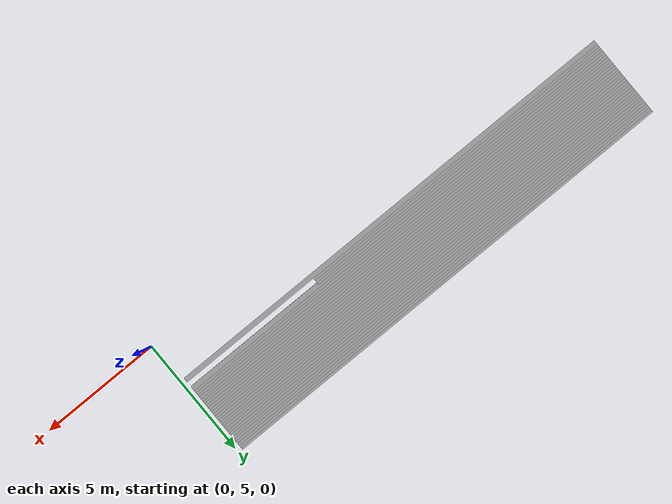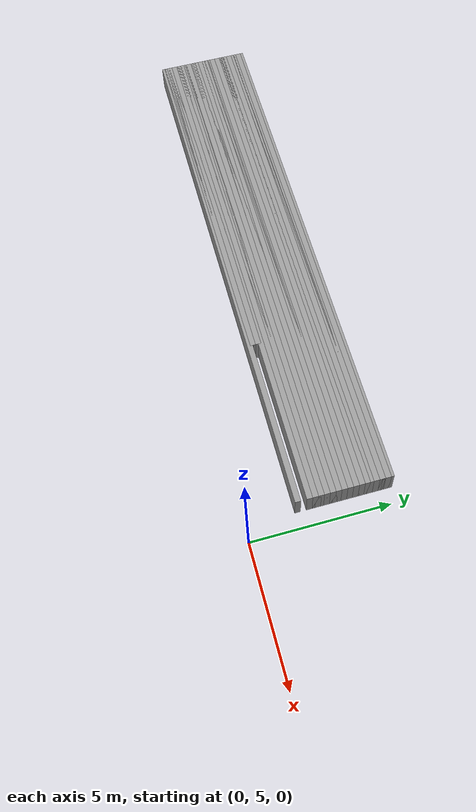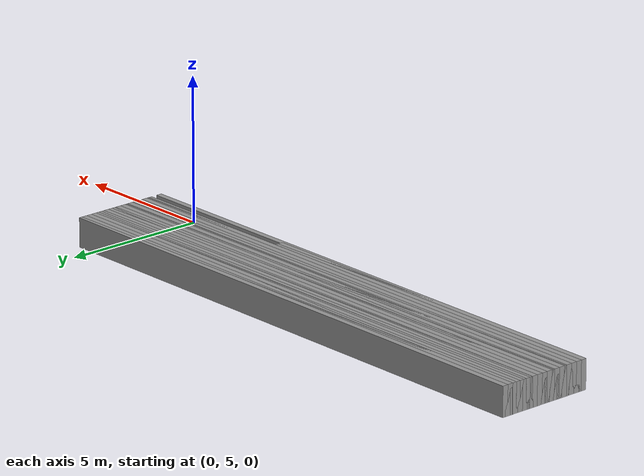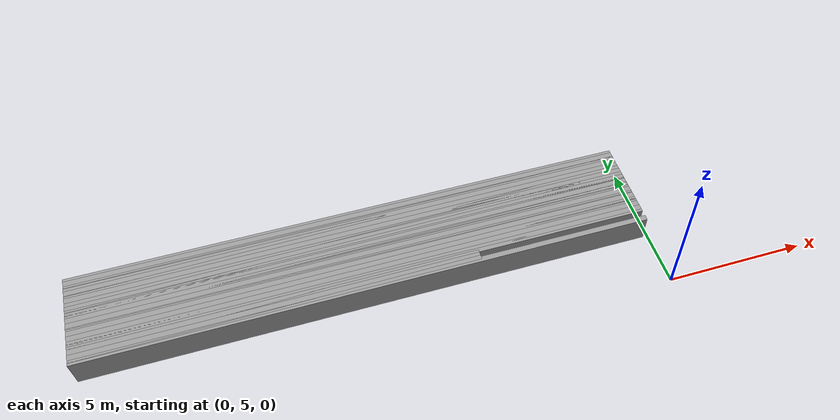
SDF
<sdf version="1.6">
 <world name="GridMap">
  <model name="GridMap">
   <link name="Wall_(101.5,68.0)">
    <collision name="Wall_(101.5,68.0)_Collision">
     <geometry><box><size>19.5 0.2 1.0</size></box></geometry>
     <pose>-10.15 6.800000000000001 0.5 0 -0 0</pose>
    </collision>
    <visual name="Wall_(101.5,68.0)_Visual">
     <geometry><box><size>19.5 0.2 1.0</size></box></geometry>
     <pose>-10.15 6.800000000000001 0.5 0 -0 0</pose>
     <material>
      <script><uri>file://media/materials/scripts/gazebo.material</uri><name>Gazebo/Grey</name></script>
      <ambient>1 1 1 1</ambient>
     </material>
     <meta><layer>0</layer></meta>
    </visual>
    <pose>0 0 0.5 0 -0 0</pose>
   </link>
   <link name="Wall_(131.5,69.0)">
    <collision name="Wall_(131.5,69.0)_Collision">
     <geometry><box><size>13.5 0.2 1.0</size></box></geometry>
     <pose>-13.15 6.9 0.5 0 -0 0</pose>
    </collision>
    <visual name="Wall_(131.5,69.0)_Visual">
     <geometry><box><size>13.5 0.2 1.0</size></box></geometry>
     <pose>-13.15 6.9 0.5 0 -0 0</pose>
     <material>
      <script><uri>file://media/materials/scripts/gazebo.material</uri><name>Gazebo/Grey</name></script>
      <ambient>1 1 1 1</ambient>
     </material>
     <meta><layer>0</layer></meta>
    </visual>
    <pose>0 0 0.5 0 -0 0</pose>
   </link>
   <link name="Wall_(131.5,70.0)">
    <collision name="Wall_(131.5,70.0)_Collision">
     <geometry><box><size>13.5 0.2 1.0</size></box></geometry>
     <pose>-13.15 7.0 0.5 0 -0 0</pose>
    </collision>
    <visual name="Wall_(131.5,70.0)_Visual">
     <geometry><box><size>13.5 0.2 1.0</size></box></geometry>
     <pose>-13.15 7.0 0.5 0 -0 0</pose>
     <material>
      <script><uri>file://media/materials/scripts/gazebo.material</uri><name>Gazebo/Grey</name></script>
      <ambient>1 1 1 1</ambient>
     </material>
     <meta><layer>0</layer></meta>
    </visual>
    <pose>0 0 0.5 0 -0 0</pose>
   </link>
   <link name="Wall_(131.5,71.0)">
    <collision name="Wall_(131.5,71.0)_Collision">
     <geometry><box><size>13.5 0.2 1.0</size></box></geometry>
     <pose>-13.15 7.1000000000000005 0.5 0 -0 0</pose>
    </collision>
    <visual name="Wall_(131.5,71.0)_Visual">
     <geometry><box><size>13.5 0.2 1.0</size></box></geometry>
     <pose>-13.15 7.1000000000000005 0.5 0 -0 0</pose>
     <material>
      <script><uri>file://media/materials/scripts/gazebo.material</uri><name>Gazebo/Grey</name></script>
      <ambient>1 1 1 1</ambient>
     </material>
     <meta><layer>0</layer></meta>
    </visual>
    <pose>0 0 0.5 0 -0 0</pose>
   </link>
   <link name="Wall_(101.5,72.0)">
    <collision name="Wall_(101.5,72.0)_Collision">
     <geometry><box><size>19.5 0.2 1.0</size></box></geometry>
     <pose>-10.15 7.2 0.5 0 -0 0</pose>
    </collision>
    <visual name="Wall_(101.5,72.0)_Visual">
     <geometry><box><size>19.5 0.2 1.0</size></box></geometry>
     <pose>-10.15 7.2 0.5 0 -0 0</pose>
     <material>
      <script><uri>file://media/materials/scripts/gazebo.material</uri><name>Gazebo/Grey</name></script>
      <ambient>1 1 1 1</ambient>
     </material>
     <meta><layer>0</layer></meta>
    </visual>
    <pose>0 0 0.5 0 -0 0</pose>
   </link>
   <link name="Wall_(101.5,73.0)">
    <collision name="Wall_(101.5,73.0)_Collision">
     <geometry><box><size>19.5 0.2 1.0</size></box></geometry>
     <pose>-10.15 7.300000000000001 0.5 0 -0 0</pose>
    </collision>
    <visual name="Wall_(101.5,73.0)_Visual">
     <geometry><box><size>19.5 0.2 1.0</size></box></geometry>
     <pose>-10.15 7.300000000000001 0.5 0 -0 0</pose>
     <material>
      <script><uri>file://media/materials/scripts/gazebo.material</uri><name>Gazebo/Grey</name></script>
      <ambient>1 1 1 1</ambient>
     </material>
     <meta><layer>0</layer></meta>
    </visual>
    <pose>0 0 0.5 0 -0 0</pose>
   </link>
   <link name="Wall_(101.5,74.0)">
    <collision name="Wall_(101.5,74.0)_Collision">
     <geometry><box><size>19.5 0.2 1.0</size></box></geometry>
     <pose>-10.15 7.4 0.5 0 -0 0</pose>
    </collision>
    <visual name="Wall_(101.5,74.0)_Visual">
     <geometry><box><size>19.5 0.2 1.0</size></box></geometry>
     <pose>-10.15 7.4 0.5 0 -0 0</pose>
     <material>
      <script><uri>file://media/materials/scripts/gazebo.material</uri><name>Gazebo/Grey</name></script>
      <ambient>1 1 1 1</ambient>
     </material>
     <meta><layer>0</layer></meta>
    </visual>
    <pose>0 0 0.5 0 -0 0</pose>
   </link>
   <link name="Wall_(101.5,75.0)">
    <collision name="Wall_(101.5,75.0)_Collision">
     <geometry><box><size>19.5 0.2 1.0</size></box></geometry>
     <pose>-10.15 7.5 0.5 0 -0 0</pose>
    </collision>
    <visual name="Wall_(101.5,75.0)_Visual">
     <geometry><box><size>19.5 0.2 1.0</size></box></geometry>
     <pose>-10.15 7.5 0.5 0 -0 0</pose>
     <material>
      <script><uri>file://media/materials/scripts/gazebo.material</uri><name>Gazebo/Grey</name></script>
      <ambient>1 1 1 1</ambient>
     </material>
     <meta><layer>0</layer></meta>
    </visual>
    <pose>0 0 0.5 0 -0 0</pose>
   </link>
   <link name="Wall_(101.5,76.0)">
    <collision name="Wall_(101.5,76.0)_Collision">
     <geometry><box><size>19.5 0.2 1.0</size></box></geometry>
     <pose>-10.15 7.6000000000000005 0.5 0 -0 0</pose>
    </collision>
    <visual name="Wall_(101.5,76.0)_Visual">
     <geometry><box><size>19.5 0.2 1.0</size></box></geometry>
     <pose>-10.15 7.6000000000000005 0.5 0 -0 0</pose>
     <material>
      <script><uri>file://media/materials/scripts/gazebo.material</uri><name>Gazebo/Grey</name></script>
      <ambient>1 1 1 1</ambient>
     </material>
     <meta><layer>0</layer></meta>
    </visual>
    <pose>0 0 0.5 0 -0 0</pose>
   </link>
   <link name="Wall_(101.5,77.0)">
    <collision name="Wall_(101.5,77.0)_Collision">
     <geometry><box><size>19.5 0.2 1.0</size></box></geometry>
     <pose>-10.15 7.7 0.5 0 -0 0</pose>
    </collision>
    <visual name="Wall_(101.5,77.0)_Visual">
     <geometry><box><size>19.5 0.2 1.0</size></box></geometry>
     <pose>-10.15 7.7 0.5 0 -0 0</pose>
     <material>
      <script><uri>file://media/materials/scripts/gazebo.material</uri><name>Gazebo/Grey</name></script>
      <ambient>1 1 1 1</ambient>
     </material>
     <meta><layer>0</layer></meta>
    </visual>
    <pose>0 0 0.5 0 -0 0</pose>
   </link>
   <link name="Wall_(101.5,78.0)">
    <collision name="Wall_(101.5,78.0)_Collision">
     <geometry><box><size>19.5 0.2 1.0</size></box></geometry>
     <pose>-10.15 7.800000000000001 0.5 0 -0 0</pose>
    </collision>
    <visual name="Wall_(101.5,78.0)_Visual">
     <geometry><box><size>19.5 0.2 1.0</size></box></geometry>
     <pose>-10.15 7.800000000000001 0.5 0 -0 0</pose>
     <material>
      <script><uri>file://media/materials/scripts/gazebo.material</uri><name>Gazebo/Grey</name></script>
      <ambient>1 1 1 1</ambient>
     </material>
     <meta><layer>0</layer></meta>
    </visual>
    <pose>0 0 0.5 0 -0 0</pose>
   </link>
   <link name="Wall_(101.5,79.0)">
    <collision name="Wall_(101.5,79.0)_Collision">
     <geometry><box><size>19.5 0.2 1.0</size></box></geometry>
     <pose>-10.15 7.9 0.5 0 -0 0</pose>
    </collision>
    <visual name="Wall_(101.5,79.0)_Visual">
     <geometry><box><size>19.5 0.2 1.0</size></box></geometry>
     <pose>-10.15 7.9 0.5 0 -0 0</pose>
     <material>
      <script><uri>file://media/materials/scripts/gazebo.material</uri><name>Gazebo/Grey</name></script>
      <ambient>1 1 1 1</ambient>
     </material>
     <meta><layer>0</layer></meta>
    </visual>
    <pose>0 0 0.5 0 -0 0</pose>
   </link>
   <link name="Wall_(101.5,80.0)">
    <collision name="Wall_(101.5,80.0)_Collision">
     <geometry><box><size>19.5 0.2 1.0</size></box></geometry>
     <pose>-10.15 8.0 0.5 0 -0 0</pose>
    </collision>
    <visual name="Wall_(101.5,80.0)_Visual">
     <geometry><box><size>19.5 0.2 1.0</size></box></geometry>
     <pose>-10.15 8.0 0.5 0 -0 0</pose>
     <material>
      <script><uri>file://media/materials/scripts/gazebo.material</uri><name>Gazebo/Grey</name></script>
      <ambient>1 1 1 1</ambient>
     </material>
     <meta><layer>0</layer></meta>
    </visual>
    <pose>0 0 0.5 0 -0 0</pose>
   </link>
   <link name="Wall_(101.5,81.0)">
    <collision name="Wall_(101.5,81.0)_Collision">
     <geometry><box><size>19.5 0.2 1.0</size></box></geometry>
     <pose>-10.15 8.1 0.5 0 -0 0</pose>
    </collision>
    <visual name="Wall_(101.5,81.0)_Visual">
     <geometry><box><size>19.5 0.2 1.0</size></box></geometry>
     <pose>-10.15 8.1 0.5 0 -0 0</pose>
     <material>
      <script><uri>file://media/materials/scripts/gazebo.material</uri><name>Gazebo/Grey</name></script>
      <ambient>1 1 1 1</ambient>
     </material>
     <meta><layer>0</layer></meta>
    </visual>
    <pose>0 0 0.5 0 -0 0</pose>
   </link>
   <link name="Wall_(101.5,82.0)">
    <collision name="Wall_(101.5,82.0)_Collision">
     <geometry><box><size>19.5 0.2 1.0</size></box></geometry>
     <pose>-10.15 8.200000000000001 0.5 0 -0 0</pose>
    </collision>
    <visual name="Wall_(101.5,82.0)_Visual">
     <geometry><box><size>19.5 0.2 1.0</size></box></geometry>
     <pose>-10.15 8.200000000000001 0.5 0 -0 0</pose>
     <material>
      <script><uri>file://media/materials/scripts/gazebo.material</uri><name>Gazebo/Grey</name></script>
      <ambient>1 1 1 1</ambient>
     </material>
     <meta><layer>0</layer></meta>
    </visual>
    <pose>0 0 0.5 0 -0 0</pose>
   </link>
   <link name="Wall_(101.5,83.0)">
    <collision name="Wall_(101.5,83.0)_Collision">
     <geometry><box><size>19.5 0.2 1.0</size></box></geometry>
     <pose>-10.15 8.3 0.5 0 -0 0</pose>
    </collision>
    <visual name="Wall_(101.5,83.0)_Visual">
     <geometry><box><size>19.5 0.2 1.0</size></box></geometry>
     <pose>-10.15 8.3 0.5 0 -0 0</pose>
     <material>
      <script><uri>file://media/materials/scripts/gazebo.material</uri><name>Gazebo/Grey</name></script>
      <ambient>1 1 1 1</ambient>
     </material>
     <meta><layer>0</layer></meta>
    </visual>
    <pose>0 0 0.5 0 -0 0</pose>
   </link>
   <link name="Wall_(101.5,84.0)">
    <collision name="Wall_(101.5,84.0)_Collision">
     <geometry><box><size>19.5 0.2 1.0</size></box></geometry>
     <pose>-10.15 8.4 0.5 0 -0 0</pose>
    </collision>
    <visual name="Wall_(101.5,84.0)_Visual">
     <geometry><box><size>19.5 0.2 1.0</size></box></geometry>
     <pose>-10.15 8.4 0.5 0 -0 0</pose>
     <material>
      <script><uri>file://media/materials/scripts/gazebo.material</uri><name>Gazebo/Grey</name></script>
      <ambient>1 1 1 1</ambient>
     </material>
     <meta><layer>0</layer></meta>
    </visual>
    <pose>0 0 0.5 0 -0 0</pose>
   </link>
   <link name="Wall_(101.5,85.0)">
    <collision name="Wall_(101.5,85.0)_Collision">
     <geometry><box><size>19.5 0.2 1.0</size></box></geometry>
     <pose>-10.15 8.5 0.5 0 -0 0</pose>
    </collision>
    <visual name="Wall_(101.5,85.0)_Visual">
     <geometry><box><size>19.5 0.2 1.0</size></box></geometry>
     <pose>-10.15 8.5 0.5 0 -0 0</pose>
     <material>
      <script><uri>file://media/materials/scripts/gazebo.material</uri><name>Gazebo/Grey</name></script>
      <ambient>1 1 1 1</ambient>
     </material>
     <meta><layer>0</layer></meta>
    </visual>
    <pose>0 0 0.5 0 -0 0</pose>
   </link>
   <link name="Wall_(101.5,86.0)">
    <collision name="Wall_(101.5,86.0)_Collision">
     <geometry><box><size>19.5 0.2 1.0</size></box></geometry>
     <pose>-10.15 8.6 0.5 0 -0 0</pose>
    </collision>
    <visual name="Wall_(101.5,86.0)_Visual">
     <geometry><box><size>19.5 0.2 1.0</size></box></geometry>
     <pose>-10.15 8.6 0.5 0 -0 0</pose>
     <material>
      <script><uri>file://media/materials/scripts/gazebo.material</uri><name>Gazebo/Grey</name></script>
      <ambient>1 1 1 1</ambient>
     </material>
     <meta><layer>0</layer></meta>
    </visual>
    <pose>0 0 0.5 0 -0 0</pose>
   </link>
   <link name="Wall_(101.5,87.0)">
    <collision name="Wall_(101.5,87.0)_Collision">
     <geometry><box><size>19.5 0.2 1.0</size></box></geometry>
     <pose>-10.15 8.700000000000001 0.5 0 -0 0</pose>
    </collision>
    <visual name="Wall_(101.5,87.0)_Visual">
     <geometry><box><size>19.5 0.2 1.0</size></box></geometry>
     <pose>-10.15 8.700000000000001 0.5 0 -0 0</pose>
     <material>
      <script><uri>file://media/materials/scripts/gazebo.material</uri><name>Gazebo/Grey</name></script>
      <ambient>1 1 1 1</ambient>
     </material>
     <meta><layer>0</layer></meta>
    </visual>
    <pose>0 0 0.5 0 -0 0</pose>
   </link>
   <link name="Wall_(101.5,88.0)">
    <collision name="Wall_(101.5,88.0)_Collision">
     <geometry><box><size>19.5 0.2 1.0</size></box></geometry>
     <pose>-10.15 8.8 0.5 0 -0 0</pose>
    </collision>
    <visual name="Wall_(101.5,88.0)_Visual">
     <geometry><box><size>19.5 0.2 1.0</size></box></geometry>
     <pose>-10.15 8.8 0.5 0 -0 0</pose>
     <material>
      <script><uri>file://media/materials/scripts/gazebo.material</uri><name>Gazebo/Grey</name></script>
      <ambient>1 1 1 1</ambient>
     </material>
     <meta><layer>0</layer></meta>
    </visual>
    <pose>0 0 0.5 0 -0 0</pose>
   </link>
   <link name="Wall_(101.5,89.0)">
    <collision name="Wall_(101.5,89.0)_Collision">
     <geometry><box><size>19.5 0.2 1.0</size></box></geometry>
     <pose>-10.15 8.9 0.5 0 -0 0</pose>
    </collision>
    <visual name="Wall_(101.5,89.0)_Visual">
     <geometry><box><size>19.5 0.2 1.0</size></box></geometry>
     <pose>-10.15 8.9 0.5 0 -0 0</pose>
     <material>
      <script><uri>file://media/materials/scripts/gazebo.material</uri><name>Gazebo/Grey</name></script>
      <ambient>1 1 1 1</ambient>
     </material>
     <meta><layer>0</layer></meta>
    </visual>
    <pose>0 0 0.5 0 -0 0</pose>
   </link>
   <link name="Wall_(101.5,90.0)">
    <collision name="Wall_(101.5,90.0)_Collision">
     <geometry><box><size>19.5 0.2 1.0</size></box></geometry>
     <pose>-10.15 9.0 0.5 0 -0 0</pose>
    </collision>
    <visual name="Wall_(101.5,90.0)_Visual">
     <geometry><box><size>19.5 0.2 1.0</size></box></geometry>
     <pose>-10.15 9.0 0.5 0 -0 0</pose>
     <material>
      <script><uri>file://media/materials/scripts/gazebo.material</uri><name>Gazebo/Grey</name></script>
      <ambient>1 1 1 1</ambient>
     </material>
     <meta><layer>0</layer></meta>
    </visual>
    <pose>0 0 0.5 0 -0 0</pose>
   </link>
   <link name="Wall_(101.5,91.0)">
    <collision name="Wall_(101.5,91.0)_Collision">
     <geometry><box><size>19.5 0.2 1.0</size></box></geometry>
     <pose>-10.15 9.1 0.5 0 -0 0</pose>
    </collision>
    <visual name="Wall_(101.5,91.0)_Visual">
     <geometry><box><size>19.5 0.2 1.0</size></box></geometry>
     <pose>-10.15 9.1 0.5 0 -0 0</pose>
     <material>
      <script><uri>file://media/materials/scripts/gazebo.material</uri><name>Gazebo/Grey</name></script>
      <ambient>1 1 1 1</ambient>
     </material>
     <meta><layer>0</layer></meta>
    </visual>
    <pose>0 0 0.5 0 -0 0</pose>
   </link>
   <link name="Wall_(101.5,92.0)">
    <collision name="Wall_(101.5,92.0)_Collision">
     <geometry><box><size>19.5 0.2 1.0</size></box></geometry>
     <pose>-10.15 9.200000000000001 0.5 0 -0 0</pose>
    </collision>
    <visual name="Wall_(101.5,92.0)_Visual">
     <geometry><box><size>19.5 0.2 1.0</size></box></geometry>
     <pose>-10.15 9.200000000000001 0.5 0 -0 0</pose>
     <material>
      <script><uri>file://media/materials/scripts/gazebo.material</uri><name>Gazebo/Grey</name></script>
      <ambient>1 1 1 1</ambient>
     </material>
     <meta><layer>0</layer></meta>
    </visual>
    <pose>0 0 0.5 0 -0 0</pose>
   </link>
   <link name="Wall_(101.5,93.0)">
    <collision name="Wall_(101.5,93.0)_Collision">
     <geometry><box><size>19.5 0.2 1.0</size></box></geometry>
     <pose>-10.15 9.3 0.5 0 -0 0</pose>
    </collision>
    <visual name="Wall_(101.5,93.0)_Visual">
     <geometry><box><size>19.5 0.2 1.0</size></box></geometry>
     <pose>-10.15 9.3 0.5 0 -0 0</pose>
     <material>
      <script><uri>file://media/materials/scripts/gazebo.material</uri><name>Gazebo/Grey</name></script>
      <ambient>1 1 1 1</ambient>
     </material>
     <meta><layer>0</layer></meta>
    </visual>
    <pose>0 0 0.5 0 -0 0</pose>
   </link>
   <link name="Wall_(101.5,94.0)">
    <collision name="Wall_(101.5,94.0)_Collision">
     <geometry><box><size>19.5 0.2 1.0</size></box></geometry>
     <pose>-10.15 9.4 0.5 0 -0 0</pose>
    </collision>
    <visual name="Wall_(101.5,94.0)_Visual">
     <geometry><box><size>19.5 0.2 1.0</size></box></geometry>
     <pose>-10.15 9.4 0.5 0 -0 0</pose>
     <material>
      <script><uri>file://media/materials/scripts/gazebo.material</uri><name>Gazebo/Grey</name></script>
      <ambient>1 1 1 1</ambient>
     </material>
     <meta><layer>0</layer></meta>
    </visual>
    <pose>0 0 0.5 0 -0 0</pose>
   </link>
   <link name="Wall_(101.5,95.0)">
    <collision name="Wall_(101.5,95.0)_Collision">
     <geometry><box><size>19.5 0.2 1.0</size></box></geometry>
     <pose>-10.15 9.5 0.5 0 -0 0</pose>
    </collision>
    <visual name="Wall_(101.5,95.0)_Visual">
     <geometry><box><size>19.5 0.2 1.0</size></box></geometry>
     <pose>-10.15 9.5 0.5 0 -0 0</pose>
     <material>
      <script><uri>file://media/materials/scripts/gazebo.material</uri><name>Gazebo/Grey</name></script>
      <ambient>1 1 1 1</ambient>
     </material>
     <meta><layer>0</layer></meta>
    </visual>
    <pose>0 0 0.5 0 -0 0</pose>
   </link>
   <link name="Wall_(101.5,96.0)">
    <collision name="Wall_(101.5,96.0)_Collision">
     <geometry><box><size>19.5 0.2 1.0</size></box></geometry>
     <pose>-10.15 9.600000000000001 0.5 0 -0 0</pose>
    </collision>
    <visual name="Wall_(101.5,96.0)_Visual">
     <geometry><box><size>19.5 0.2 1.0</size></box></geometry>
     <pose>-10.15 9.600000000000001 0.5 0 -0 0</pose>
     <material>
      <script><uri>file://media/materials/scripts/gazebo.material</uri><name>Gazebo/Grey</name></script>
      <ambient>1 1 1 1</ambient>
     </material>
     <meta><layer>0</layer></meta>
    </visual>
    <pose>0 0 0.5 0 -0 0</pose>
   </link>
   <link name="Wall_(101.5,97.0)">
    <collision name="Wall_(101.5,97.0)_Collision">
     <geometry><box><size>19.5 0.2 1.0</size></box></geometry>
     <pose>-10.15 9.700000000000001 0.5 0 -0 0</pose>
    </collision>
    <visual name="Wall_(101.5,97.0)_Visual">
     <geometry><box><size>19.5 0.2 1.0</size></box></geometry>
     <pose>-10.15 9.700000000000001 0.5 0 -0 0</pose>
     <material>
      <script><uri>file://media/materials/scripts/gazebo.material</uri><name>Gazebo/Grey</name></script>
      <ambient>1 1 1 1</ambient>
     </material>
     <meta><layer>0</layer></meta>
    </visual>
    <pose>0 0 0.5 0 -0 0</pose>
   </link>
   <link name="Wall_(101.5,98.0)">
    <collision name="Wall_(101.5,98.0)_Collision">
     <geometry><box><size>19.5 0.2 1.0</size></box></geometry>
     <pose>-10.15 9.8 0.5 0 -0 0</pose>
    </collision>
    <visual name="Wall_(101.5,98.0)_Visual">
     <geometry><box><size>19.5 0.2 1.0</size></box></geometry>
     <pose>-10.15 9.8 0.5 0 -0 0</pose>
     <material>
      <script><uri>file://media/materials/scripts/gazebo.material</uri><name>Gazebo/Grey</name></script>
      <ambient>1 1 1 1</ambient>
     </material>
     <meta><layer>0</layer></meta>
    </visual>
    <pose>0 0 0.5 0 -0 0</pose>
   </link>
   <link name="Wall_(101.5,99.0)">
    <collision name="Wall_(101.5,99.0)_Collision">
     <geometry><box><size>19.5 0.2 1.0</size></box></geometry>
     <pose>-10.15 9.9 0.5 0 -0 0</pose>
    </collision>
    <visual name="Wall_(101.5,99.0)_Visual">
     <geometry><box><size>19.5 0.2 1.0</size></box></geometry>
     <pose>-10.15 9.9 0.5 0 -0 0</pose>
     <material>
      <script><uri>file://media/materials/scripts/gazebo.material</uri><name>Gazebo/Grey</name></script>
      <ambient>1 1 1 1</ambient>
     </material>
     <meta><layer>0</layer></meta>
    </visual>
    <pose>0 0 0.5 0 -0 0</pose>
   </link>
   <link name="Wall_(101.5,100.0)">
    <collision name="Wall_(101.5,100.0)_Collision">
     <geometry><box><size>19.5 0.2 1.0</size></box></geometry>
     <pose>-10.15 10.0 0.5 0 -0 0</pose>
    </collision>
    <visual name="Wall_(101.5,100.0)_Visual">
     <geometry><box><size>19.5 0.2 1.0</size></box></geometry>
     <pose>-10.15 10.0 0.5 0 -0 0</pose>
     <material>
      <script><uri>file://media/materials/scripts/gazebo.material</uri><name>Gazebo/Grey</name></script>
      <ambient>1 1 1 1</ambient>
     </material>
     <meta><layer>0</layer></meta>
    </visual>
    <pose>0 0 0.5 0 -0 0</pose>
   </link>
   <static>1</static>
  </model>
 </world>
</sdf>
